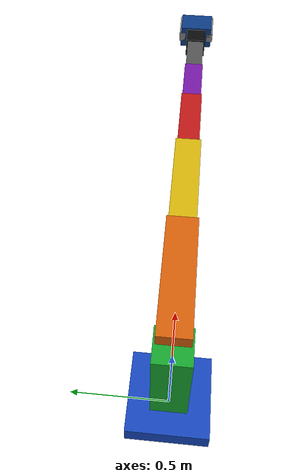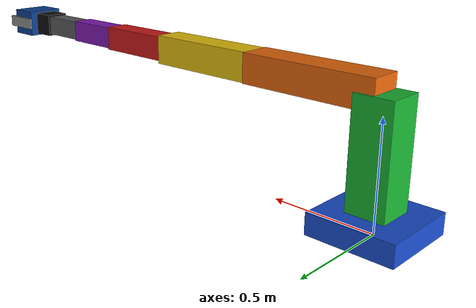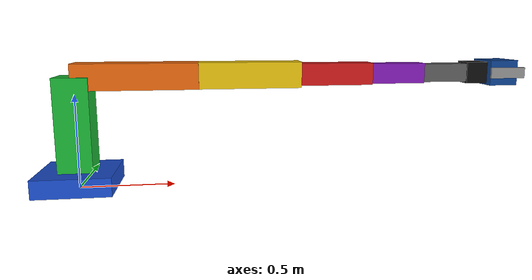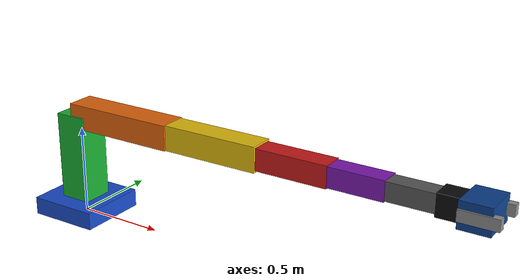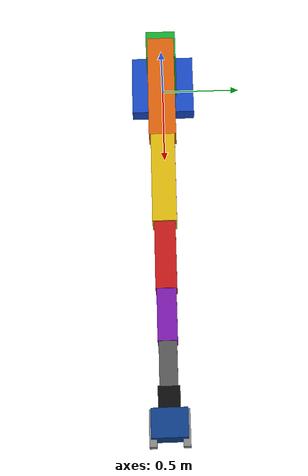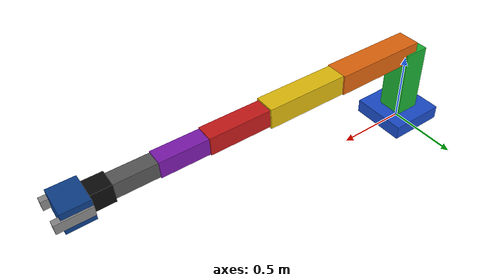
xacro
<?xml version="1.0"?>
<robot xmlns:xacro="http://www.ros.org/wiki/xacro" name="six_dof_arm">
    <xacro:arg name="initial_positions_file" default="initial_positions.yaml" />

    <!-- Import six_dof_arm urdf file -->
    <xacro:include filename="$(find six_dof_arm_description)/urdf/six_dof_arm.urdf.xacro" />

    <!-- Import control_xacro -->
    <xacro:include filename="six_dof_arm.ros2_control.xacro" />

    <xacro:six_dof_arm_ros2_control name="FakeSystem" initial_positions_file="$(arg initial_positions_file)"/>

</robot>

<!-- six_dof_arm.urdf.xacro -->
<robot xmlns:xacro="http://www.ros.org/wiki/xacro" name="six_dof_arm">

  <link name="base_link">

    <visual>
      <origin xyz="0 0 0.05" rpy="0 0 0"/>
      <geometry>
        <box size="0.4 0.4 0.1"/>
      </geometry>
      <material name="blue">
        <color rgba="0.1 0.3 0.8 1.0"/>
      </material>
    </visual>

    <collision>
      <origin xyz="0 0 0.05" rpy="0 0 0"/>
      <geometry>
        <box size="0.4 0.4 0.1"/>
      </geometry>
    </collision>

    <inertial>
      <origin xyz="0 0 0.05" rpy="0 0 0"/>
      <mass value="1.0"/>
      <inertia
        ixx="0.01417"
        ixy="0.0"
        ixz="0.0"
        iyy="0.01417"
        iyz="0.0"
        izz="0.02667"/>
    </inertial>

  </link>

     <link name="link_1">

    <visual>
      <origin xyz="0 0 0.25" rpy="0 0 0"/>
      <geometry>
        <box size="0.18 0.18 0.5"/>
      </geometry>
      <material name="green">
        <color rgba="0.1 0.7 0.2 1.0"/>
      </material>
    </visual>

    <collision>
      <origin xyz="0 0 0.25" rpy="0 0 0"/>
      <geometry>
        <box size="0.18 0.18 0.5"/>
      </geometry>
    </collision>

    <inertial>
      <origin xyz="0 0 0.25" rpy="0 0 0"/>
      <mass value="1.0"/>
      <inertia
        ixx="0.02303"
        ixy="0.0"
        ixz="0.0"
        iyy="0.02203"
        iyz="0.0"
        izz="0.00540"/>
    </inertial>

  </link>

  <joint name="joint_1" type="revolute">
    <parent link="base_link"/>
    <child link="link_1"/>
    <origin xyz="0 0 0.1" rpy="0 0 0"/>
    <axis xyz="0 0 1"/>
    <limit
      lower="-3.14159"
      upper="3.14159"
      effort="100.0"
      velocity="1.0"/>
  </joint>

   <link name="link_2">

    <visual>
      <origin xyz="0.325 0 0" rpy="0 0 0"/>
      <geometry>
        <box size="0.65 0.16 0.14"/>
      </geometry>
      <material name="orange">
        <color rgba="0.9 0.4 0.05 1.0"/>
      </material>
    </visual>

    <collision>
      <origin xyz="0.325 0 0" rpy="0 0 0"/>
      <geometry>
        <box size="0.65 0.16 0.14"/>
      </geometry>
    </collision>

    <inertial>
      <origin xyz="0.325 0 0" rpy="0 0 0"/>
      <mass value="1.2"/>
      <inertia
        ixx="0.00452"
        ixy="0.0"
        ixz="0.0"
        iyy="0.04421"
        iyz="0.0"
        izz="0.04481"/>
    </inertial>

  </link>

  <joint name="joint_2" type="revolute">
    <parent link="link_1"/>
    <child link="link_2"/>
    <origin xyz="0 0 0.5" rpy="0 0 0"/>
    <axis xyz="0 1 0"/>
    <limit
      lower="-1.5708"
      upper="1.5708"
      effort="80.0"
      velocity="1.0"/>
  </joint>

  <link name="link_3">

    <visual>
      <origin xyz="0.275 0 0" rpy="0 0 0"/>
      <geometry>
        <box size="0.55 0.14 0.14"/>
      </geometry>
      <material name="yellow">
        <color rgba="0.9 0.75 0.05 1.0"/>
      </material>
    </visual>

    <collision>
      <origin xyz="0.275 0 0" rpy="0 0 0"/>
      <geometry>
        <box size="0.55 0.14 0.14"/>
      </geometry>
    </collision>

    <inertial>
      <origin xyz="0.275 0 0" rpy="0 0 0"/>
      <mass value="0.9"/>
      <inertia
        ixx="0.00294"
        ixy="0.0"
        ixz="0.0"
        iyy="0.02416"
        iyz="0.0"
        izz="0.02416"/>
    </inertial>

  </link>

  <joint name="joint_3" type="revolute">
    <parent link="link_2"/>
    <child link="link_3"/>
    <origin xyz="0.65 0 0" rpy="0 0 0"/>
    <axis xyz="0 1 0"/>
    <limit
      lower="-2.0"
      upper="2.0"
      effort="60.0"
      velocity="1.2"/>
  </joint>

   <link name="link_4">

    <visual>
      <origin xyz="0.2 0 0" rpy="0 0 0"/>
      <geometry>
        <box size="0.4 0.12 0.12"/>
      </geometry>
      <material name="red">
        <color rgba="0.8 0.1 0.1 1.0"/>
      </material>
    </visual>

    <collision>
      <origin xyz="0.2 0 0" rpy="0 0 0"/>
      <geometry>
        <box size="0.4 0.12 0.12"/>
      </geometry>
    </collision>

    <inertial>
      <origin xyz="0.2 0 0" rpy="0 0 0"/>
      <mass value="0.6"/>
      <inertia
        ixx="0.00144"
        ixy="0.0"
        ixz="0.0"
        iyy="0.00872"
        iyz="0.0"
        izz="0.00872"/>
    </inertial>

  </link>

  <joint name="joint_4" type="revolute">
    <parent link="link_3"/>
    <child link="link_4"/>
    <origin xyz="0.55 0 0" rpy="0 0 0"/>
    <axis xyz="1 0 0"/>
    <limit
      lower="-3.14159"
      upper="3.14159"
      effort="40.0"
      velocity="1.5"/>
  </joint>

  <link name="link_5">

    <visual>
      <origin xyz="0.15 0 0" rpy="0 0 0"/>
      <geometry>
        <box size="0.3 0.11 0.11"/>
      </geometry>
      <material name="purple">
        <color rgba="0.5 0.1 0.7 1.0"/>
      </material>
    </visual>

    <collision>
      <origin xyz="0.15 0 0" rpy="0 0 0"/>
      <geometry>
        <box size="0.3 0.11 0.11"/>
      </geometry>
    </collision>

    <inertial>
      <origin xyz="0.15 0 0" rpy="0 0 0"/>
      <mass value="0.4"/>
      <inertia
        ixx="0.00081"
        ixy="0.0"
        ixz="0.0"
        iyy="0.00340"
        iyz="0.0"
        izz="0.00340"/>
    </inertial>

  </link>

  <joint name="joint_5" type="revolute">
    <parent link="link_4"/>
    <child link="link_5"/>
    <origin xyz="0.4 0 0" rpy="0 0 0"/>
    <axis xyz="0 1 0"/>
    <limit
      lower="-1.5708"
      upper="1.5708"
      effort="30.0"
      velocity="1.5"/>
  </joint>

  <link name="link_6">

    <visual>
      <origin xyz="0.125 0 0" rpy="0 0 0"/>
      <geometry>
        <box size="0.25 0.1 0.1"/>
      </geometry>
      <material name="gray">
        <color rgba="0.35 0.35 0.35 1.0"/>
      </material>
    </visual>

    <collision>
      <origin xyz="0.125 0 0" rpy="0 0 0"/>
      <geometry>
        <box size="0.25 0.1 0.1"/>
      </geometry>
    </collision>

    <inertial>
      <origin xyz="0.125 0 0" rpy="0 0 0"/>
      <mass value="0.3"/>
      <inertia
        ixx="0.00050"
        ixy="0.0"
        ixz="0.0"
        iyy="0.00181"
        iyz="0.0"
        izz="0.00181"/>
    </inertial>

  </link>

  <joint name="joint_6" type="revolute">
    <parent link="link_5"/>
    <child link="link_6"/>
    <origin xyz="0.3 0 0" rpy="0 0 0"/>
    <axis xyz="1 0 0"/>
    <limit
      lower="-3.14159"
      upper="3.14159"
      effort="20.0"
      velocity="2.0"/>
  </joint>

  <link name="tool0">

    <visual>
      <origin xyz="0.06 0 0" rpy="0 0 0"/>
      <geometry>
        <box size="0.12 0.12 0.12"/>
      </geometry>
      <material name="black">
        <color rgba="0.05 0.05 0.05 1.0"/>
      </material>
    </visual>

    <collision>
      <origin xyz="0.06 0 0" rpy="0 0 0"/>
      <geometry>
        <box size="0.12 0.12 0.12"/>
      </geometry>
    </collision>

    <inertial>
      <origin xyz="0.06 0 0" rpy="0 0 0"/>
      <mass value="0.2"/>
      <inertia
        ixx="0.00048"
        ixy="0.0"
        ixz="0.0"
        iyy="0.00048"
        iyz="0.0"
        izz="0.00048"/>
    </inertial>

  </link>

  <joint name="tool0_fixed_joint" type="fixed">
    <parent link="link_6"/>
    <child link="tool0"/>
    <origin xyz="0.25 0 0" rpy="0 0 0"/>
  </joint>

   <link name="gripper_base">

    <visual>
      <origin xyz="0.08 0 0" rpy="0 0 0"/>
      <geometry>
        <box size="0.16 0.20 0.14"/>
      </geometry>
      <material name="gripper_blue">
        <color rgba="0.05 0.25 0.55 1.0"/>
      </material>
    </visual>

    <collision>
      <origin xyz="0.08 0 0" rpy="0 0 0"/>
      <geometry>
        <box size="0.16 0.20 0.14"/>
      </geometry>
    </collision>

    <inertial>
      <origin xyz="0.08 0 0" rpy="0 0 0"/>
      <mass value="0.25"/>
      <inertia
        ixx="0.00124"
        ixy="0.0"
        ixz="0.0"
        iyy="0.00094"
        iyz="0.0"
        izz="0.00137"/>
    </inertial>

  </link>

  <joint name="gripper_mount_joint" type="fixed">
    <parent link="tool0"/>
    <child link="gripper_base"/>
    <origin xyz="0.12 0 0" rpy="0 0 0"/>
  </joint>

  <link name="gripper_left_finger">

    <visual>
      <origin xyz="0.10 0 0" rpy="0 0 0"/>
      <geometry>
        <box size="0.20 0.04 0.06"/>
      </geometry>
      <material name="finger_gray">
        <color rgba="0.55 0.55 0.55 1.0"/>
      </material>
    </visual>

    <collision>
      <origin xyz="0.10 0 0" rpy="0 0 0"/>
      <geometry>
        <box size="0.20 0.04 0.06"/>
      </geometry>
    </collision>

    <inertial>
      <origin xyz="0.10 0 0" rpy="0 0 0"/>
      <mass value="0.10"/>
      <inertia
        ixx="0.000043"
        ixy="0.0"
        ixz="0.0"
        iyy="0.000363"
        iyz="0.0"
        izz="0.000347"/>
    </inertial>

  </link>

  <joint name="gripper_left_joint" type="prismatic">
    <parent link="gripper_base"/>
    <child link="gripper_left_finger"/>
    <origin xyz="0 0.09 0" rpy="0 0 0"/>
    <axis xyz="0 -1 0"/>
    <limit
      lower="0.0"
      upper="0.06"
      effort="20.0"
      velocity="0.2"/>
  </joint>

  <link name="gripper_right_finger">

    <visual>
      <origin xyz="0.10 0 0" rpy="0 0 0"/>
      <geometry>
        <box size="0.20 0.04 0.06"/>
      </geometry>
      <material name="finger_gray">
        <color rgba="0.55 0.55 0.55 1.0"/>
      </material>
    </visual>

    <collision>
      <origin xyz="0.10 0 0" rpy="0 0 0"/>
      <geometry>
        <box size="0.20 0.04 0.06"/>
      </geometry>
    </collision>

    <inertial>
      <origin xyz="0.10 0 0" rpy="0 0 0"/>
      <mass value="0.10"/>
      <inertia
        ixx="0.000043"
        ixy="0.0"
        ixz="0.0"
        iyy="0.000363"
        iyz="0.0"
        izz="0.000347"/>
    </inertial>

  </link>

  <joint name="gripper_right_joint" type="prismatic">
    <parent link="gripper_base"/>
    <child link="gripper_right_finger"/>
    <origin xyz="0 -0.09 0" rpy="0 0 0"/>
    <axis xyz="0 1 0"/>
    <limit
      lower="0.0"
      upper="0.06"
      effort="20.0"
      velocity="0.2"/>
  </joint>

  <!-- gazebo_initial_static_settings -->
  <!-- İlk Gazebo yükleme testi için robot sabit tutulur. -->
  <gazebo>
    <static>false</static>
    <self_collide>false</self_collide>
  </gazebo>

  <!-- ros2_control_initial_configuration -->
  <ros2_control name="GazeboSystem" type="system">
    <hardware>
      <plugin>gz_ros2_control/GazeboSimSystem</plugin>
    </hardware>

    <joint name="joint_1">
      <command_interface name="position"/>
      <state_interface name="position"/>
      <state_interface name="velocity"/>
    </joint>

    <joint name="joint_2">
      <command_interface name="position"/>
      <state_interface name="position"/>
      <state_interface name="velocity"/>
    </joint>

    <joint name="joint_3">
      <command_interface name="position"/>
      <state_interface name="position"/>
      <state_interface name="velocity"/>
    </joint>

    <joint name="joint_4">
      <command_interface name="position"/>
      <state_interface name="position"/>
      <state_interface name="velocity"/>
    </joint>

    <joint name="joint_5">
      <command_interface name="position"/>
      <state_interface name="position"/>
      <state_interface name="velocity"/>
    </joint>

    <joint name="joint_6">
      <command_interface name="position"/>
      <state_interface name="position"/>
      <state_interface name="velocity"/>
    </joint>

    <!-- gripper_ros2_control_interfaces -->
    <joint name="gripper_left_joint">
      <command_interface name="position"/>
      <state_interface name="position"/>
      <state_interface name="velocity"/>
    </joint>

    <joint name="gripper_right_joint">
      <command_interface name="position"/>
      <state_interface name="position"/>
      <state_interface name="velocity"/>
    </joint>
  </ros2_control>

  <gazebo>
    <plugin filename="gz_ros2_control-system"
            name="gz_ros2_control::GazeboSimROS2ControlPlugin">
      <parameters>$(find six_dof_arm_description)/config/controllers.yaml</parameters>
    </plugin>
  </gazebo>

  <!-- dynamic_world_anchor_configuration -->
  <!-- Robot tabanını Gazebo dünyasına sabitler. -->
  <link name="world"/>

  <joint name="world_fixed_joint" type="fixed">
    <parent link="world"/>
    <child link="base_link"/>
    <origin xyz="0 0 0" rpy="0 0 0"/>
  </joint>
</robot>
